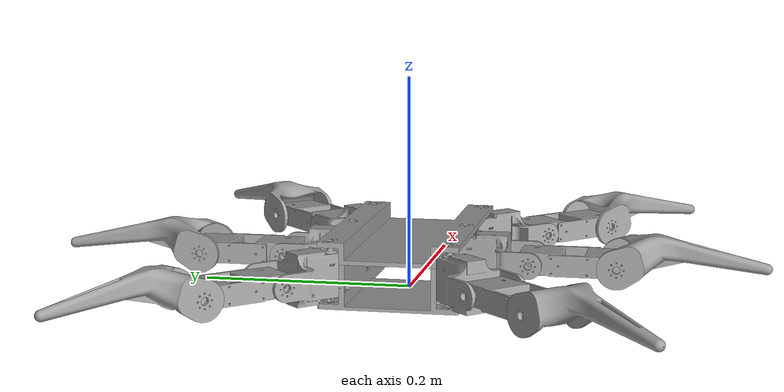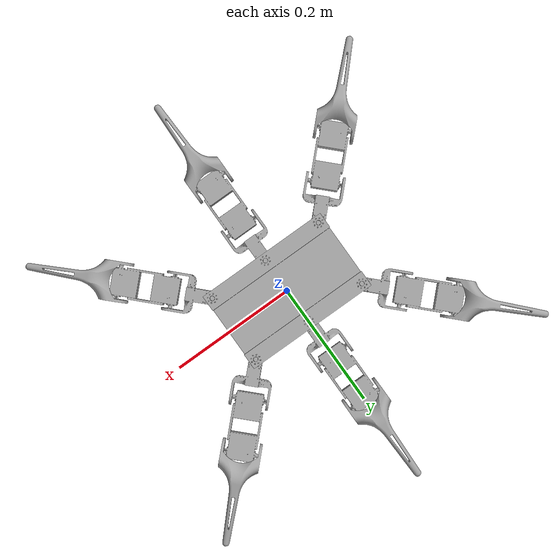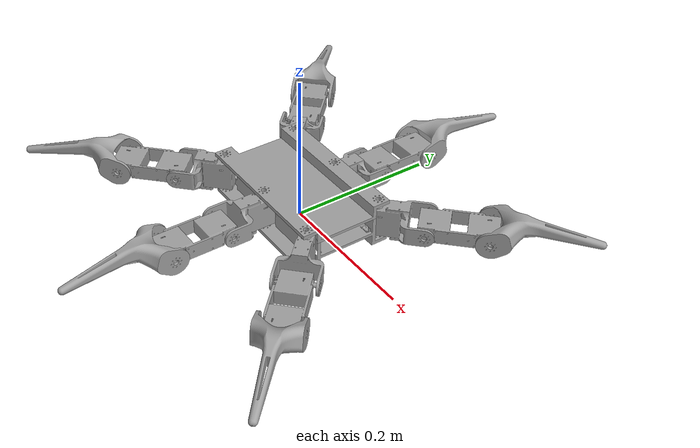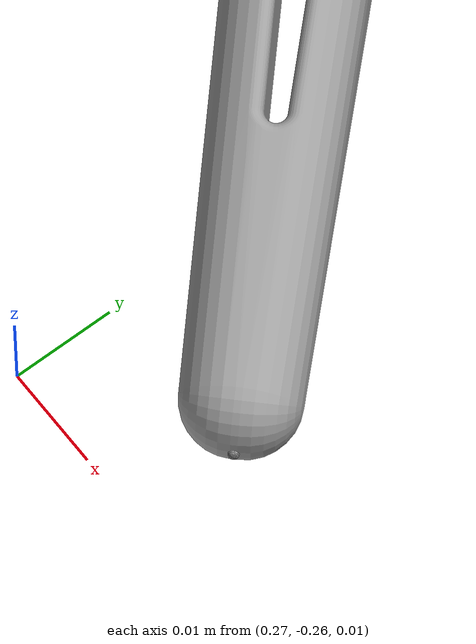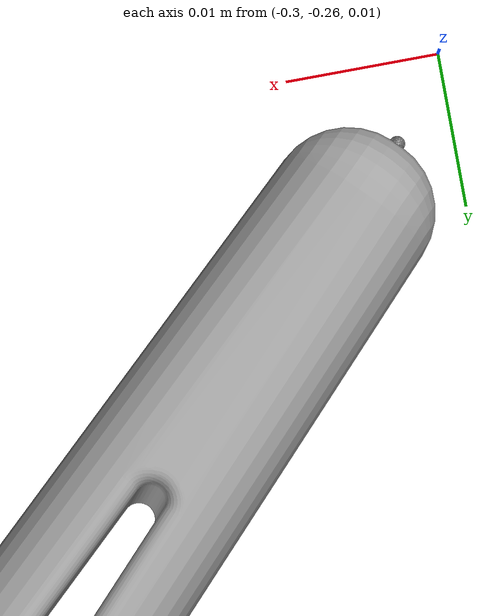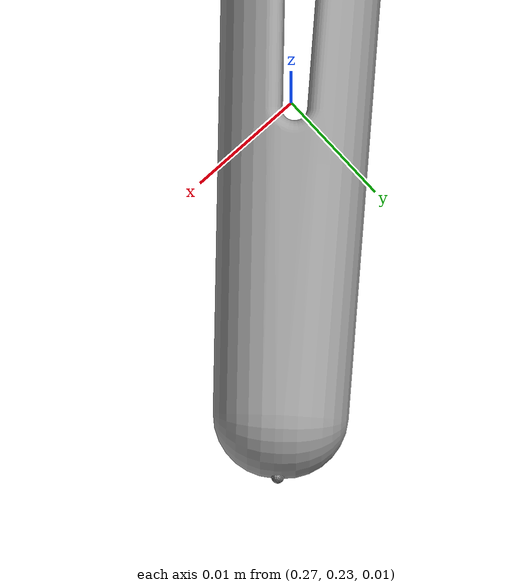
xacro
<?xml version="1.0" ?>
<robot name="spider_robot" xmlns:xacro="http://www.ros.org/wiki/xacro">

<xacro:include filename="$(find robot_contest)/urdf/materials.xacro" />
<xacro:include filename="$(find robot_contest)/urdf/spider_robot.trans" />
<xacro:include filename="$(find robot_contest)/urdf/spider_robot.gazebo" />

<link name="dummy">
</link>

<joint name="dummy_joint" type="fixed">
  <parent link="dummy"/>
  <child link="base_link"/>
</joint>

<link name="base_link">
  <inertial>
    <origin xyz="0.0021738035282516323 -5.3831472792831295e-06 0.01261348241836993" rpy="0 0 0"/>
    <mass value="1.3309040257890745"/>
    <inertia ixx="0.002367" iyy="0.004807" izz="0.006796" ixy="-1e-06" iyz="0.0" ixz="-0.000181"/>
  </inertial>
  <visual>
    <origin xyz="0 0 0" rpy="0 0 0"/>
    <geometry>
      <mesh filename="package://robot_contest/meshes/base_link.stl" scale="0.001 0.001 0.001"/>
    </geometry>
    <material name="_"/>
  </visual>
  <collision>
    <origin xyz="0 0 0" rpy="0 0 0"/>
    <geometry>
      <mesh filename="package://robot_contest/meshes/base_link.stl" scale="0.001 0.001 0.001"/>
    </geometry>
  </collision>
</link>

<link name="part1_1">
  <inertial>
    <origin xyz="0.022505274993332033 0.02250533409144543 0.025822431167356885" rpy="0 0 0"/>
    <mass value="0.4602344613336842"/>
    <inertia ixx="0.000191" iyy="0.000191" izz="0.000233" ixy="-1.7e-05" iyz="2e-06" ixz="2e-06"/>
  </inertial>
  <visual>
    <origin xyz="-0.095 -0.0545 -0.005" rpy="0 0 0"/>
    <geometry>
      <mesh filename="package://robot_contest/meshes/part1_1.stl" scale="0.001 0.001 0.001"/>
    </geometry>
    <material name="_"/>
  </visual>
  <collision>
    <origin xyz="-0.095 -0.0545 -0.005" rpy="0 0 0"/>
    <geometry>
      <mesh filename="package://robot_contest/meshes/part1_1.stl" scale="0.001 0.001 0.001"/>
    </geometry>
  </collision>
</link>

<link name="part2_1">
  <inertial>
    <origin xyz="0.0700858828860957 -0.01258371206185141 7.509815979495071e-08" rpy="0 0 0"/>
    <mass value="0.4914048488278606"/>
    <inertia ixx="0.000667" iyy="0.000662" izz="0.001296" ixy="0.000141" iyz="-0.0" ixz="0.0"/>
  </inertial>
  <visual>
    <origin xyz="-0.12058 -0.116673 -0.0304" rpy="0 0 0"/>
    <geometry>
      <mesh filename="package://robot_contest/meshes/part2_1.stl" scale="0.001 0.001 0.001"/>
    </geometry>
    <material name="_"/>
  </visual>
  <collision>
    <origin xyz="-0.12058 -0.116673 -0.0304" rpy="0 0 0"/>
    <geometry>
      <mesh filename="package://robot_contest/meshes/part2_1.stl" scale="0.001 0.001 0.001"/>
    </geometry>
  </collision>
</link>

<link name="part4_1">
  <inertial>
    <origin xyz="0.02250533409144241 -0.02250527499333315 0.02582243116735693" rpy="0 0 0"/>
    <mass value="0.4602344613336842"/>
    <inertia ixx="0.000191" iyy="0.000191" izz="0.000233" ixy="1.7e-05" iyz="-2e-06" ixz="2e-06"/>
  </inertial>
  <visual>
    <origin xyz="-0.095 0.0545 -0.005" rpy="0 0 0"/>
    <geometry>
      <mesh filename="package://robot_contest/meshes/part4_1.stl" scale="0.001 0.001 0.001"/>
    </geometry>
    <material name="_"/>
  </visual>
  <collision>
    <origin xyz="-0.095 0.0545 -0.005" rpy="0 0 0"/>
    <geometry>
      <mesh filename="package://robot_contest/meshes/part4_1.stl" scale="0.001 0.001 0.001"/>
    </geometry>
  </collision>
</link>

<link name="part5_1">
  <inertial>
    <origin xyz="0.07008588288609359 0.012583712061850896 -7.509815944453657e-08" rpy="0 0 0"/>
    <mass value="0.4914048488278606"/>
    <inertia ixx="0.000667" iyy="0.000662" izz="0.001296" ixy="-0.000141" iyz="-0.0" ixz="-0.0"/>
  </inertial>
  <visual>
    <origin xyz="-0.12058 0.116673 -0.0304" rpy="0 0 0"/>
    <geometry>
      <mesh filename="package://robot_contest/meshes/part5_1.stl" scale="0.001 0.001 0.001"/>
    </geometry>
    <material name="_"/>
  </visual>
  <collision>
    <origin xyz="-0.12058 0.116673 -0.0304" rpy="0 0 0"/>
    <geometry>
      <mesh filename="package://robot_contest/meshes/part5_1.stl" scale="0.001 0.001 0.001"/>
    </geometry>
  </collision>
</link>

<link name="part7_1">
  <inertial>
    <origin xyz="-4.1788675663946726e-08 0.03182730690918333 0.025822431167356972" rpy="0 0 0"/>
    <mass value="0.4602344613336842"/>
    <inertia ixx="0.000208" iyy="0.000175" izz="0.000233" ixy="-0.0" iyz="3e-06" ixz="0.0"/>
  </inertial>
  <visual>
    <origin xyz="-0.0 -0.0545 -0.005" rpy="0 0 0"/>
    <geometry>
      <mesh filename="package://robot_contest/meshes/part7_1.stl" scale="0.001 0.001 0.001"/>
    </geometry>
    <material name="_"/>
  </visual>
  <collision>
    <origin xyz="-0.0 -0.0545 -0.005" rpy="0 0 0"/>
    <geometry>
      <mesh filename="package://robot_contest/meshes/part7_1.stl" scale="0.001 0.001 0.001"/>
    </geometry>
  </collision>
</link>

<link name="part8_1">
  <inertial>
    <origin xyz="0.0584560727416802 0.04065991629223413 7.509815936820874e-08" rpy="0 0 0"/>
    <mass value="0.4914048488278607"/>
    <inertia ixx="0.000523" iyy="0.000806" izz="0.001296" ixy="3e-06" iyz="-0.0" ixz="0.0"/>
  </inertial>
  <visual>
    <origin xyz="0.025875 -0.116551 -0.0304" rpy="0 0 0"/>
    <geometry>
      <mesh filename="package://robot_contest/meshes/part8_1.stl" scale="0.001 0.001 0.001"/>
    </geometry>
    <material name="_"/>
  </visual>
  <collision>
    <origin xyz="0.025875 -0.116551 -0.0304" rpy="0 0 0"/>
    <geometry>
      <mesh filename="package://robot_contest/meshes/part8_1.stl" scale="0.001 0.001 0.001"/>
    </geometry>
  </collision>
</link>

<link name="part10_1">
  <inertial>
    <origin xyz="4.178867428557693e-08 -0.03182730690918042 0.025822431167356934" rpy="0 0 0"/>
    <mass value="0.4602344613336842"/>
    <inertia ixx="0.000208" iyy="0.000175" izz="0.000233" ixy="-0.0" iyz="-3e-06" ixz="-0.0"/>
  </inertial>
  <visual>
    <origin xyz="0.0 0.0545 -0.005" rpy="0 0 0"/>
    <geometry>
      <mesh filename="package://robot_contest/meshes/part10_1.stl" scale="0.001 0.001 0.001"/>
    </geometry>
    <material name="_"/>
  </visual>
  <collision>
    <origin xyz="0.0 0.0545 -0.005" rpy="0 0 0"/>
    <geometry>
      <mesh filename="package://robot_contest/meshes/part10_1.stl" scale="0.001 0.001 0.001"/>
    </geometry>
  </collision>
</link>

<link name="part11_1">
  <inertial>
    <origin xyz="0.05845607274167791 -0.04065991629223088 -7.509816075945697e-08" rpy="0 0 0"/>
    <mass value="0.4914048488278607"/>
    <inertia ixx="0.000523" iyy="0.000806" izz="0.001296" ixy="-3e-06" iyz="-0.0" ixz="-0.0"/>
  </inertial>
  <visual>
    <origin xyz="0.025875 0.116551 -0.0304" rpy="0 0 0"/>
    <geometry>
      <mesh filename="package://robot_contest/meshes/part11_1.stl" scale="0.001 0.001 0.001"/>
    </geometry>
    <material name="_"/>
  </visual>
  <collision>
    <origin xyz="0.025875 0.116551 -0.0304" rpy="0 0 0"/>
    <geometry>
      <mesh filename="package://robot_contest/meshes/part11_1.stl" scale="0.001 0.001 0.001"/>
    </geometry>
  </collision>
</link>

<link name="part13_1">
  <inertial>
    <origin xyz="-0.022505334091443813 0.02250527499333347 0.02582243116735773" rpy="0 0 0"/>
    <mass value="0.4602344613336842"/>
    <inertia ixx="0.000191" iyy="0.000191" izz="0.000233" ixy="1.7e-05" iyz="2e-06" ixz="-2e-06"/>
  </inertial>
  <visual>
    <origin xyz="0.095 -0.0545 -0.005" rpy="0 0 0"/>
    <geometry>
      <mesh filename="package://robot_contest/meshes/part13_1.stl" scale="0.001 0.001 0.001"/>
    </geometry>
    <material name="_"/>
  </visual>
  <collision>
    <origin xyz="0.095 -0.0545 -0.005" rpy="0 0 0"/>
    <geometry>
      <mesh filename="package://robot_contest/meshes/part13_1.stl" scale="0.001 0.001 0.001"/>
    </geometry>
  </collision>
</link>

<link name="part14_1">
  <inertial>
    <origin xyz="-0.03416463432822242 0.023337536496022104 7.509816054088181e-08" rpy="0 0 0"/>
    <mass value="0.4914048488278606"/>
    <inertia ixx="0.000662" iyy="0.000667" izz="0.001296" ixy="-0.000141" iyz="-0.0" ixz="-0.0"/>
  </inertial>
  <visual>
    <origin xyz="0.157173 -0.08008 -0.0304" rpy="0 0 0"/>
    <geometry>
      <mesh filename="package://robot_contest/meshes/part14_1.stl" scale="0.001 0.001 0.001"/>
    </geometry>
    <material name="_"/>
  </visual>
  <collision>
    <origin xyz="0.157173 -0.08008 -0.0304" rpy="0 0 0"/>
    <geometry>
      <mesh filename="package://robot_contest/meshes/part14_1.stl" scale="0.001 0.001 0.001"/>
    </geometry>
  </collision>
</link>

<link name="part16_1">
  <inertial>
    <origin xyz="-0.022505274993333407 -0.022505334091439795 0.025822431167357933" rpy="0 0 0"/>
    <mass value="0.4602344613336841"/>
    <inertia ixx="0.000191" iyy="0.000191" izz="0.000233" ixy="-1.7e-05" iyz="-2e-06" ixz="-2e-06"/>
  </inertial>
  <visual>
    <origin xyz="0.095 0.0545 -0.005" rpy="0 0 0"/>
    <geometry>
      <mesh filename="package://robot_contest/meshes/part16_1.stl" scale="0.001 0.001 0.001"/>
    </geometry>
    <material name="_"/>
  </visual>
  <collision>
    <origin xyz="0.095 0.0545 -0.005" rpy="0 0 0"/>
    <geometry>
      <mesh filename="package://robot_contest/meshes/part16_1.stl" scale="0.001 0.001 0.001"/>
    </geometry>
  </collision>
</link>

<link name="part17_1">
  <inertial>
    <origin xyz="-0.03416463432822456 -0.023337536496015623 -7.509815899350847e-08" rpy="0 0 0"/>
    <mass value="0.4914048488278606"/>
    <inertia ixx="0.000662" iyy="0.000667" izz="0.001296" ixy="0.000141" iyz="-0.0" ixz="0.0"/>
  </inertial>
  <visual>
    <origin xyz="0.157173 0.08008 -0.0304" rpy="0 0 0"/>
    <geometry>
      <mesh filename="package://robot_contest/meshes/part17_1.stl" scale="0.001 0.001 0.001"/>
    </geometry>
    <material name="_"/>
  </visual>
  <collision>
    <origin xyz="0.157173 0.08008 -0.0304" rpy="0 0 0"/>
    <geometry>
      <mesh filename="package://robot_contest/meshes/part17_1.stl" scale="0.001 0.001 0.001"/>
    </geometry>
  </collision>
</link>

<link name="part3_1">
  <inertial>
    <origin xyz="0.004221158383464624 -0.04758074361356199 -0.010298255954450997" rpy="0 0 0"/>
    <mass value="0.12505650813052724"/>
    <inertia ixx="0.001082" iyy="0.000159" izz="0.001129" ixy="-7.5e-05" iyz="-0.000208" ixz="-1.1e-05"/>
  </inertial>
  <visual>
    <origin xyz="-0.214003 -0.138254 -0.0304" rpy="0 0 0"/>
    <geometry>
      <mesh filename="package://robot_contest/meshes/part3_1.stl" scale="0.001 0.001 0.001"/>
    </geometry>
    <material name="_"/>
  </visual>
  <collision>
    <origin xyz="-0.214003 -0.138254 -0.0304" rpy="0 0 0"/>
    <geometry>
      <mesh filename="package://robot_contest/meshes/part3_1.stl" scale="0.001 0.001 0.001"/>
    </geometry>
  </collision>
</link>

<link name="part6_1">
  <inertial>
    <origin xyz="0.03479869953680867 0.0592049589644737 -0.010298255954450442" rpy="0 0 0"/>
    <mass value="0.1250565081305319"/>
    <inertia ixx="0.001363" iyy="0.000216" izz="0.001467" ixy="-0.000277" iyz="0.000239" ixz="6.3e-05"/>
  </inertial>
  <visual>
    <origin xyz="-0.214003 0.138254 -0.0304" rpy="0 0 0"/>
    <geometry>
      <mesh filename="package://robot_contest/meshes/part6_1.stl" scale="0.001 0.001 0.001"/>
    </geometry>
    <material name="_"/>
  </visual>
  <collision>
    <origin xyz="-0.214003 0.138254 -0.0304" rpy="0 0 0"/>
    <geometry>
      <mesh filename="package://robot_contest/meshes/part6_1.stl" scale="0.001 0.001 0.001"/>
    </geometry>
  </collision>
</link>

<link name="part9_1">
  <inertial>
    <origin xyz="-0.029793763473125137 0.04613844978067949 -0.010298255954450313" rpy="0 0 0"/>
    <mass value="0.12505650813053223"/>
    <inertia ixx="0.000196" iyy="0.000106" izz="0.000191" ixy="-8e-06" iyz="2e-05" ixz="-1.2e-05"/>
  </inertial>
  <visual>
    <origin xyz="-0.024925 -0.197871 -0.0304" rpy="0 0 0"/>
    <geometry>
      <mesh filename="package://robot_contest/meshes/part9_1.stl" scale="0.001 0.001 0.001"/>
    </geometry>
    <material name="_"/>
  </visual>
  <collision>
    <origin xyz="-0.024925 -0.197871 -0.0304" rpy="0 0 0"/>
    <geometry>
      <mesh filename="package://robot_contest/meshes/part9_1.stl" scale="0.001 0.001 0.001"/>
    </geometry>
  </collision>
</link>

<link name="part12_1">
  <inertial>
    <origin xyz="-0.0763301129730041 -0.06509177558310722 -0.010298255954450247" rpy="0 0 0"/>
    <mass value="0.12505650813053235"/>
    <inertia ixx="0.000278" iyy="0.000392" izz="0.000557" ixy="-0.000175" iyz="-6.3e-05" ixz="-0.000111"/>
  </inertial>
  <visual>
    <origin xyz="-0.024925 0.197871 -0.0304" rpy="0 0 0"/>
    <geometry>
      <mesh filename="package://robot_contest/meshes/part12_1.stl" scale="0.001 0.001 0.001"/>
    </geometry>
    <material name="_"/>
  </visual>
  <collision>
    <origin xyz="-0.024925 0.197871 -0.0304" rpy="0 0 0"/>
    <geometry>
      <mesh filename="package://robot_contest/meshes/part12_1.stl" scale="0.001 0.001 0.001"/>
    </geometry>
  </collision>
</link>

<link name="part15_1">
  <inertial>
    <origin xyz="-0.03721261981245194 0.07321669362063984 -0.010298255954450782" rpy="0 0 0"/>
    <mass value="0.12505650813052843"/>
    <inertia ixx="0.000643" iyy="0.000138" izz="0.00067" ixy="-1.1e-05" iyz="0.000146" ixz="1.5e-05"/>
  </inertial>
  <visual>
    <origin xyz="0.178754 -0.173503 -0.0304" rpy="0 0 0"/>
    <geometry>
      <mesh filename="package://robot_contest/meshes/part15_1.stl" scale="0.001 0.001 0.001"/>
    </geometry>
    <material name="_"/>
  </visual>
  <collision>
    <origin xyz="0.178754 -0.173503 -0.0304" rpy="0 0 0"/>
    <geometry>
      <mesh filename="package://robot_contest/meshes/part15_1.stl" scale="0.001 0.001 0.001"/>
    </geometry>
  </collision>
</link>

<link name="part18_1">
  <inertial>
    <origin xyz="-0.08233230187734139 0.09080916411778589 -0.010298255954450788" rpy="0 0 0"/>
    <mass value="0.12505650813052913"/>
    <inertia ixx="0.001224" iyy="0.000322" izz="0.001434" ixy="0.000383" iyz="0.000223" ixz="-8.3e-05"/>
  </inertial>
  <visual>
    <origin xyz="0.178754 0.173503 -0.0304" rpy="0 0 0"/>
    <geometry>
      <mesh filename="package://robot_contest/meshes/part18_1.stl" scale="0.001 0.001 0.001"/>
    </geometry>
    <material name="_"/>
  </visual>
  <collision>
    <origin xyz="0.178754 0.173503 -0.0304" rpy="0 0 0"/>
    <geometry>
      <mesh filename="package://robot_contest/meshes/part18_1.stl" scale="0.001 0.001 0.001"/>
    </geometry>
  </collision>
</link>

<link name="d_part1_1">
  <inertial>
    <origin xyz="-2.5494084521238136e-07 2.479434127455882e-07 -2.3314683517128287e-15" rpy="0 0 0"/>
    <mass value="4.110250388446646e-06"/>
    <inertia ixx="0.0" iyy="0.0" izz="0.0" ixy="0.0" iyz="-0.0" ixz="0.0"/>
  </inertial>
  <visual>
    <origin xyz="-0.294702 -0.255545 -0.0304" rpy="0 0 0"/>
    <geometry>
      <mesh filename="package://robot_contest/meshes/d_part1_1.stl" scale="0.001 0.001 0.001"/>
    </geometry>
    <material name="_"/>
  </visual>
  <collision>
    <origin xyz="-0.294702 -0.255545 -0.0304" rpy="0 0 0"/>
    <geometry>
      <mesh filename="package://robot_contest/meshes/d_part1_1.stl" scale="0.001 0.001 0.001"/>
    </geometry>
  </collision>
</link>

<link name="d_part2_1">
  <inertial>
    <origin xyz="-2.5494084521238136e-07 2.479434127455882e-07 -2.3314683517128287e-15" rpy="0 0 0"/>
    <mass value="4.110250388446646e-06"/>
    <inertia ixx="0.0" iyy="0.0" izz="0.0" ixy="0.0" iyz="-0.0" ixz="0.0"/>
  </inertial>
  <visual>
    <origin xyz="-0.294702 -0.255545 -0.0304" rpy="0 0 0"/>
    <geometry>
      <mesh filename="package://robot_contest/meshes/d_part2_1.stl" scale="0.001 0.001 0.001"/>
    </geometry>
    <material name="_"/>
  </visual>
  <collision>
    <origin xyz="-0.294702 -0.255545 -0.0304" rpy="0 0 0"/>
    <geometry>
      <mesh filename="package://robot_contest/meshes/d_part2_1.stl" scale="0.001 0.001 0.001"/>
    </geometry>
  </collision>
</link>

<link name="d_part3_1">
  <inertial>
    <origin xyz="-2.5494084521238136e-07 2.479434127455882e-07 -2.3314683517128287e-15" rpy="0 0 0"/>
    <mass value="4.110250388446646e-06"/>
    <inertia ixx="0.0" iyy="0.0" izz="0.0" ixy="0.0" iyz="-0.0" ixz="0.0"/>
  </inertial>
  <visual>
    <origin xyz="-0.294702 -0.255545 -0.0304" rpy="0 0 0"/>
    <geometry>
      <mesh filename="package://robot_contest/meshes/d_part3_1.stl" scale="0.001 0.001 0.001"/>
    </geometry>
    <material name="_"/>
  </visual>
  <collision>
    <origin xyz="-0.294702 -0.255545 -0.0304" rpy="0 0 0"/>
    <geometry>
      <mesh filename="package://robot_contest/meshes/d_part3_1.stl" scale="0.001 0.001 0.001"/>
    </geometry>
  </collision>
</link>

<link name="d_part4_1">
  <inertial>
    <origin xyz="-2.5494084748833856e-07 -2.4794341335621084e-07 -2.321060010856968e-15" rpy="0 0 0"/>
    <mass value="4.110250388446646e-06"/>
    <inertia ixx="0.0" iyy="0.0" izz="0.0" ixy="0.0" iyz="0.0" ixz="0.0"/>
  </inertial>
  <visual>
    <origin xyz="-0.294702 0.255545 -0.0304" rpy="0 0 0"/>
    <geometry>
      <mesh filename="package://robot_contest/meshes/d_part4_1.stl" scale="0.001 0.001 0.001"/>
    </geometry>
    <material name="_"/>
  </visual>
  <collision>
    <origin xyz="-0.294702 0.255545 -0.0304" rpy="0 0 0"/>
    <geometry>
      <mesh filename="package://robot_contest/meshes/d_part4_1.stl" scale="0.001 0.001 0.001"/>
    </geometry>
  </collision>
</link>

<link name="d_part5_1">
  <inertial>
    <origin xyz="-2.5494084748833856e-07 -2.4794341335621084e-07 -2.321060010856968e-15" rpy="0 0 0"/>
    <mass value="4.110250388446646e-06"/>
    <inertia ixx="0.0" iyy="0.0" izz="0.0" ixy="0.0" iyz="0.0" ixz="0.0"/>
  </inertial>
  <visual>
    <origin xyz="-0.294702 0.255545 -0.0304" rpy="0 0 0"/>
    <geometry>
      <mesh filename="package://robot_contest/meshes/d_part5_1.stl" scale="0.001 0.001 0.001"/>
    </geometry>
    <material name="_"/>
  </visual>
  <collision>
    <origin xyz="-0.294702 0.255545 -0.0304" rpy="0 0 0"/>
    <geometry>
      <mesh filename="package://robot_contest/meshes/d_part5_1.stl" scale="0.001 0.001 0.001"/>
    </geometry>
  </collision>
</link>

<link name="d_part6_1">
  <inertial>
    <origin xyz="-2.5494084748833856e-07 -2.4794341335621084e-07 -2.321060010856968e-15" rpy="0 0 0"/>
    <mass value="4.110250388446646e-06"/>
    <inertia ixx="0.0" iyy="0.0" izz="0.0" ixy="0.0" iyz="0.0" ixz="0.0"/>
  </inertial>
  <visual>
    <origin xyz="-0.294702 0.255545 -0.0304" rpy="0 0 0"/>
    <geometry>
      <mesh filename="package://robot_contest/meshes/d_part6_1.stl" scale="0.001 0.001 0.001"/>
    </geometry>
    <material name="_"/>
  </visual>
  <collision>
    <origin xyz="-0.294702 0.255545 -0.0304" rpy="0 0 0"/>
    <geometry>
      <mesh filename="package://robot_contest/meshes/d_part6_1.stl" scale="0.001 0.001 0.001"/>
    </geometry>
  </collision>
</link>

<link name="d_part7_1">
  <inertial>
    <origin xyz="-4.640385298237959e-17 -8.370776555244319e-08 -2.258609965721803e-15" rpy="0 0 0"/>
    <mass value="4.110250388446646e-06"/>
    <inertia ixx="0.0" iyy="0.0" izz="0.0" ixy="-0.0" iyz="0.0" ixz="-0.0"/>
  </inertial>
  <visual>
    <origin xyz="0.00095 -0.337871 -0.0304" rpy="0 0 0"/>
    <geometry>
      <mesh filename="package://robot_contest/meshes/d_part7_1.stl" scale="0.001 0.001 0.001"/>
    </geometry>
    <material name="_"/>
  </visual>
  <collision>
    <origin xyz="0.00095 -0.337871 -0.0304" rpy="0 0 0"/>
    <geometry>
      <mesh filename="package://robot_contest/meshes/d_part7_1.stl" scale="0.001 0.001 0.001"/>
    </geometry>
  </collision>
</link>

<link name="d_part8_1">
  <inertial>
    <origin xyz="-4.640385298237959e-17 -8.370776555244319e-08 -2.258609965721803e-15" rpy="0 0 0"/>
    <mass value="4.110250388446646e-06"/>
    <inertia ixx="0.0" iyy="0.0" izz="0.0" ixy="-0.0" iyz="0.0" ixz="-0.0"/>
  </inertial>
  <visual>
    <origin xyz="0.00095 -0.337871 -0.0304" rpy="0 0 0"/>
    <geometry>
      <mesh filename="package://robot_contest/meshes/d_part8_1.stl" scale="0.001 0.001 0.001"/>
    </geometry>
    <material name="_"/>
  </visual>
  <collision>
    <origin xyz="0.00095 -0.337871 -0.0304" rpy="0 0 0"/>
    <geometry>
      <mesh filename="package://robot_contest/meshes/d_part8_1.stl" scale="0.001 0.001 0.001"/>
    </geometry>
  </collision>
</link>

<link name="d_part9_1">
  <inertial>
    <origin xyz="-4.640385298237959e-17 -8.370776555244319e-08 -2.258609965721803e-15" rpy="0 0 0"/>
    <mass value="4.110250388446646e-06"/>
    <inertia ixx="0.0" iyy="0.0" izz="0.0" ixy="-0.0" iyz="0.0" ixz="-0.0"/>
  </inertial>
  <visual>
    <origin xyz="0.00095 -0.337871 -0.0304" rpy="0 0 0"/>
    <geometry>
      <mesh filename="package://robot_contest/meshes/d_part9_1.stl" scale="0.001 0.001 0.001"/>
    </geometry>
    <material name="_"/>
  </visual>
  <collision>
    <origin xyz="0.00095 -0.337871 -0.0304" rpy="0 0 0"/>
    <geometry>
      <mesh filename="package://robot_contest/meshes/d_part9_1.stl" scale="0.001 0.001 0.001"/>
    </geometry>
  </collision>
</link>

<link name="d_part10_1">
  <inertial>
    <origin xyz="-2.564354978362715e-15 8.370776855004536e-08 -2.3037127760972e-15" rpy="0 0 0"/>
    <mass value="4.110250388446646e-06"/>
    <inertia ixx="0.0" iyy="0.0" izz="0.0" ixy="0.0" iyz="-0.0" ixz="0.0"/>
  </inertial>
  <visual>
    <origin xyz="0.00095 0.337871 -0.0304" rpy="0 0 0"/>
    <geometry>
      <mesh filename="package://robot_contest/meshes/d_part10_1.stl" scale="0.001 0.001 0.001"/>
    </geometry>
    <material name="_"/>
  </visual>
  <collision>
    <origin xyz="0.00095 0.337871 -0.0304" rpy="0 0 0"/>
    <geometry>
      <mesh filename="package://robot_contest/meshes/d_part10_1.stl" scale="0.001 0.001 0.001"/>
    </geometry>
  </collision>
</link>

<link name="d_part11_1">
  <inertial>
    <origin xyz="-2.564354978362715e-15 8.370776855004536e-08 -2.3037127760972e-15" rpy="0 0 0"/>
    <mass value="4.110250388446646e-06"/>
    <inertia ixx="0.0" iyy="0.0" izz="0.0" ixy="0.0" iyz="-0.0" ixz="0.0"/>
  </inertial>
  <visual>
    <origin xyz="0.00095 0.337871 -0.0304" rpy="0 0 0"/>
    <geometry>
      <mesh filename="package://robot_contest/meshes/d_part11_1.stl" scale="0.001 0.001 0.001"/>
    </geometry>
    <material name="_"/>
  </visual>
  <collision>
    <origin xyz="0.00095 0.337871 -0.0304" rpy="0 0 0"/>
    <geometry>
      <mesh filename="package://robot_contest/meshes/d_part11_1.stl" scale="0.001 0.001 0.001"/>
    </geometry>
  </collision>
</link>

<link name="d_part12_1">
  <inertial>
    <origin xyz="-2.564354978362715e-15 8.370776855004536e-08 -2.3037127760972e-15" rpy="0 0 0"/>
    <mass value="4.110250388446646e-06"/>
    <inertia ixx="0.0" iyy="0.0" izz="0.0" ixy="0.0" iyz="-0.0" ixz="0.0"/>
  </inertial>
  <visual>
    <origin xyz="0.00095 0.337871 -0.0304" rpy="0 0 0"/>
    <geometry>
      <mesh filename="package://robot_contest/meshes/d_part12_1.stl" scale="0.001 0.001 0.001"/>
    </geometry>
    <material name="_"/>
  </visual>
  <collision>
    <origin xyz="0.00095 0.337871 -0.0304" rpy="0 0 0"/>
    <geometry>
      <mesh filename="package://robot_contest/meshes/d_part12_1.stl" scale="0.001 0.001 0.001"/>
    </geometry>
  </collision>
</link>

<link name="d_part13_1">
  <inertial>
    <origin xyz="-2.479434057511831e-07 -2.549408363861083e-07 -2.3002433291452462e-15" rpy="0 0 0"/>
    <mass value="4.110250388446646e-06"/>
    <inertia ixx="0.0" iyy="0.0" izz="0.0" ixy="0.0" iyz="0.0" ixz="0.0"/>
  </inertial>
  <visual>
    <origin xyz="0.296045 -0.254202 -0.0304" rpy="0 0 0"/>
    <geometry>
      <mesh filename="package://robot_contest/meshes/d_part13_1.stl" scale="0.001 0.001 0.001"/>
    </geometry>
    <material name="_"/>
  </visual>
  <collision>
    <origin xyz="0.296045 -0.254202 -0.0304" rpy="0 0 0"/>
    <geometry>
      <mesh filename="package://robot_contest/meshes/d_part13_1.stl" scale="0.001 0.001 0.001"/>
    </geometry>
  </collision>
</link>

<link name="d_part14_1">
  <inertial>
    <origin xyz="-2.479434057511831e-07 -2.549408363861083e-07 -2.3002433291452462e-15" rpy="0 0 0"/>
    <mass value="4.110250388446646e-06"/>
    <inertia ixx="0.0" iyy="0.0" izz="0.0" ixy="0.0" iyz="0.0" ixz="0.0"/>
  </inertial>
  <visual>
    <origin xyz="0.296045 -0.254202 -0.0304" rpy="0 0 0"/>
    <geometry>
      <mesh filename="package://robot_contest/meshes/d_part14_1.stl" scale="0.001 0.001 0.001"/>
    </geometry>
    <material name="_"/>
  </visual>
  <collision>
    <origin xyz="0.296045 -0.254202 -0.0304" rpy="0 0 0"/>
    <geometry>
      <mesh filename="package://robot_contest/meshes/d_part14_1.stl" scale="0.001 0.001 0.001"/>
    </geometry>
  </collision>
</link>

<link name="d_part15_1">
  <inertial>
    <origin xyz="-2.479434057511831e-07 -2.549408363861083e-07 -2.3002433291452462e-15" rpy="0 0 0"/>
    <mass value="4.110250388446646e-06"/>
    <inertia ixx="0.0" iyy="0.0" izz="0.0" ixy="0.0" iyz="0.0" ixz="0.0"/>
  </inertial>
  <visual>
    <origin xyz="0.296045 -0.254202 -0.0304" rpy="0 0 0"/>
    <geometry>
      <mesh filename="package://robot_contest/meshes/d_part15_1.stl" scale="0.001 0.001 0.001"/>
    </geometry>
    <material name="_"/>
  </visual>
  <collision>
    <origin xyz="0.296045 -0.254202 -0.0304" rpy="0 0 0"/>
    <geometry>
      <mesh filename="package://robot_contest/meshes/d_part15_1.stl" scale="0.001 0.001 0.001"/>
    </geometry>
  </collision>
</link>

<link name="d_part16_1">
  <inertial>
    <origin xyz="-2.479434128566105e-07 2.5494084865407274e-07 -2.338407245616736e-15" rpy="0 0 0"/>
    <mass value="4.110250388446646e-06"/>
    <inertia ixx="0.0" iyy="0.0" izz="0.0" ixy="-0.0" iyz="-0.0" ixz="0.0"/>
  </inertial>
  <visual>
    <origin xyz="0.296045 0.254202 -0.0304" rpy="0 0 0"/>
    <geometry>
      <mesh filename="package://robot_contest/meshes/d_part16_1.stl" scale="0.001 0.001 0.001"/>
    </geometry>
    <material name="_"/>
  </visual>
  <collision>
    <origin xyz="0.296045 0.254202 -0.0304" rpy="0 0 0"/>
    <geometry>
      <mesh filename="package://robot_contest/meshes/d_part16_1.stl" scale="0.001 0.001 0.001"/>
    </geometry>
  </collision>
</link>

<link name="d_part17_1">
  <inertial>
    <origin xyz="-2.479434128566105e-07 2.5494084865407274e-07 -2.338407245616736e-15" rpy="0 0 0"/>
    <mass value="4.110250388446646e-06"/>
    <inertia ixx="0.0" iyy="0.0" izz="0.0" ixy="-0.0" iyz="-0.0" ixz="0.0"/>
  </inertial>
  <visual>
    <origin xyz="0.296045 0.254202 -0.0304" rpy="0 0 0"/>
    <geometry>
      <mesh filename="package://robot_contest/meshes/d_part17_1.stl" scale="0.001 0.001 0.001"/>
    </geometry>
    <material name="_"/>
  </visual>
  <collision>
    <origin xyz="0.296045 0.254202 -0.0304" rpy="0 0 0"/>
    <geometry>
      <mesh filename="package://robot_contest/meshes/d_part17_1.stl" scale="0.001 0.001 0.001"/>
    </geometry>
  </collision>
</link>

<link name="d_part18_1">
  <inertial>
    <origin xyz="-2.479434128566105e-07 2.5494084865407274e-07 -2.338407245616736e-15" rpy="0 0 0"/>
    <mass value="4.110250388446646e-06"/>
    <inertia ixx="0.0" iyy="0.0" izz="0.0" ixy="-0.0" iyz="-0.0" ixz="0.0"/>
  </inertial>
  <visual>
    <origin xyz="0.296045 0.254202 -0.0304" rpy="0 0 0"/>
    <geometry>
      <mesh filename="package://robot_contest/meshes/d_part18_1.stl" scale="0.001 0.001 0.001"/>
    </geometry>
    <material name="_"/>
  </visual>
  <collision>
    <origin xyz="0.296045 0.254202 -0.0304" rpy="0 0 0"/>
    <geometry>
      <mesh filename="package://robot_contest/meshes/d_part18_1.stl" scale="0.001 0.001 0.001"/>
    </geometry>
  </collision>
</link>

<link name="body_1">
  <inertial>
    <origin xyz="-0.1080209237916741 -0.04381750881088558 0.07384050386535285" rpy="0 0 0"/>
    <mass value="11.882484155705294"/>
    <inertia ixx="0.03976" iyy="0.086041" izz="0.059318" ixy="-0.000229" iyz="-0.000376" ixz="0.013585"/>
  </inertial>
  <visual>
    <origin xyz="-0.085202 -0.0445 -0.0415" rpy="0 0 0"/>
    <geometry>
      <mesh filename="package://robot_contest/meshes/body_1.stl" scale="0.001 0.001 0.001"/>
    </geometry>
    <material name="_"/>
  </visual>
  <collision>
    <origin xyz="-0.085202 -0.0445 -0.0415" rpy="0 0 0"/>
    <geometry>
      <mesh filename="package://robot_contest/meshes/body_1.stl" scale="0.001 0.001 0.001"/>
    </geometry>
  </collision>
</link>

<joint name="rev1" type="continuous">
  <origin xyz="0.095 0.0545 0.005" rpy="0 0 0"/>
  <parent link="base_link"/>
  <child link="part1_1"/>
  <axis xyz="-0.0 0.0 -1.0"/>
</joint>

<joint name="rev2" type="continuous">
  <origin xyz="0.02558 0.062173 0.0254" rpy="0 0 0"/>
  <parent link="part1_1"/>
  <child link="part2_1"/>
  <axis xyz="-0.707107 0.707107 -0.0"/>
</joint>

<joint name="rev4" type="continuous">
  <origin xyz="0.095 -0.0545 0.005" rpy="0 0 0"/>
  <parent link="base_link"/>
  <child link="part4_1"/>
  <axis xyz="-0.0 0.0 -1.0"/>
</joint>

<joint name="rev5" type="continuous">
  <origin xyz="0.02558 -0.062173 0.0254" rpy="0 0 0"/>
  <parent link="part4_1"/>
  <child link="part5_1"/>
  <axis xyz="-0.707107 -0.707107 -0.0"/>
</joint>

<joint name="rev7" type="continuous">
  <origin xyz="0.0 0.0545 0.005" rpy="0 0 0"/>
  <parent link="base_link"/>
  <child link="part7_1"/>
  <axis xyz="-0.0 0.0 -1.0"/>
</joint>

<joint name="rev8" type="continuous">
  <origin xyz="-0.025875 0.062051 0.0254" rpy="0 0 0"/>
  <parent link="part7_1"/>
  <child link="part8_1"/>
  <axis xyz="-1.0 0.0 -0.0"/>
</joint>

<joint name="rev10" type="continuous">
  <origin xyz="0.0 -0.0545 0.005" rpy="0 0 0"/>
  <parent link="base_link"/>
  <child link="part10_1"/>
  <axis xyz="-0.0 0.0 -1.0"/>
</joint>

<joint name="rev11" type="continuous">
  <origin xyz="-0.025875 -0.062051 0.0254" rpy="0 0 0"/>
  <parent link="part10_1"/>
  <child link="part11_1"/>
  <axis xyz="-1.0 0.0 -0.0"/>
</joint>

<joint name="rev13" type="continuous">
  <origin xyz="-0.095 0.0545 0.005" rpy="0 0 0"/>
  <parent link="base_link"/>
  <child link="part13_1"/>
  <axis xyz="-0.0 0.0 -1.0"/>
</joint>

<joint name="rev14" type="continuous">
  <origin xyz="-0.062173 0.02558 0.0254" rpy="0 0 0"/>
  <parent link="part13_1"/>
  <child link="part14_1"/>
  <axis xyz="-0.707107 -0.707107 -0.0"/>
</joint>

<joint name="rev16" type="continuous">
  <origin xyz="-0.095 -0.0545 0.005" rpy="0 0 0"/>
  <parent link="base_link"/>
  <child link="part16_1"/>
  <axis xyz="-0.0 0.0 -1.0"/>
</joint>

<joint name="rev17" type="continuous">
  <origin xyz="-0.062173 -0.02558 0.0254" rpy="0 0 0"/>
  <parent link="part16_1"/>
  <child link="part17_1"/>
  <axis xyz="-0.707107 0.707107 0.0"/>
</joint>

<joint name="rev3" type="continuous">
  <origin xyz="0.093423 0.021581 0.0" rpy="0 0 0"/>
  <parent link="part2_1"/>
  <child link="part3_1"/>
  <axis xyz="-0.707107 0.707107 -0.0"/>
</joint>

<joint name="rev6" type="continuous">
  <origin xyz="0.093423 -0.021581 0.0" rpy="0 0 0"/>
  <parent link="part5_1"/>
  <child link="part6_1"/>
  <axis xyz="-0.707107 -0.707107 -0.0"/>
</joint>

<joint name="rev9" type="continuous">
  <origin xyz="0.0508 0.08132 0.0" rpy="0 0 0"/>
  <parent link="part8_1"/>
  <child link="part9_1"/>
  <axis xyz="-1.0 -0.0 -0.0"/>
</joint>

<joint name="rev12" type="continuous">
  <origin xyz="0.0508 -0.08132 0.0" rpy="0 0 0"/>
  <parent link="part11_1"/>
  <child link="part12_1"/>
  <axis xyz="-1.0 0.0 -0.0"/>
</joint>

<joint name="rev15" type="continuous">
  <origin xyz="-0.021581 0.093423 0.0" rpy="0 0 0"/>
  <parent link="part14_1"/>
  <child link="part15_1"/>
  <axis xyz="-0.707107 -0.707107 -0.0"/>
</joint>

<joint name="rev18" type="continuous">
  <origin xyz="-0.021581 -0.093423 0.0" rpy="0 0 0"/>
  <parent link="part17_1"/>
  <child link="part18_1"/>
  <axis xyz="-0.707107 0.707107 0.0"/>
</joint>

<joint name="d_rev1" type="continuous">
  <origin xyz="0.080699 0.117291 0.0" rpy="0 0 0"/>
  <parent link="part3_1"/>
  <child link="d_part1_1"/>
  <axis xyz="0.707107 0.707107 -0.0"/>
</joint>

<joint name="d_rev2" type="continuous">
  <origin xyz="0.0 0.0 0.0" rpy="0 0 0"/>
  <parent link="d_part1_1"/>
  <child link="d_part2_1"/>
  <axis xyz="0.707107 -0.707107 0.0"/>
</joint>

<joint name="d_rev3" type="continuous">
  <origin xyz="0.0 0.0 0.0" rpy="0 0 0"/>
  <parent link="d_part2_1"/>
  <child link="d_part3_1"/>
  <axis xyz="0.0 0.0 1.0"/>
</joint>

<joint name="d_rev4" type="continuous">
  <origin xyz="0.080699 -0.117291 0.0" rpy="0 0 0"/>
  <parent link="part6_1"/>
  <child link="d_part4_1"/>
  <axis xyz="0.707107 -0.707107 -0.0"/>
</joint>

<joint name="d_rev5" type="continuous">
  <origin xyz="0.0 0.0 0.0" rpy="0 0 0"/>
  <parent link="d_part4_1"/>
  <child link="d_part5_1"/>
  <axis xyz="-0.707107 -0.707107 -0.0"/>
</joint>

<joint name="d_rev6" type="continuous">
  <origin xyz="0.0 0.0 0.0" rpy="0 0 0"/>
  <parent link="d_part5_1"/>
  <child link="d_part6_1"/>
  <axis xyz="0.0 -0.0 1.0"/>
</joint>

<joint name="d_rev7" type="continuous">
  <origin xyz="-0.025875 0.14 0.0" rpy="0 0 0"/>
  <parent link="part9_1"/>
  <child link="d_part7_1"/>
  <axis xyz="-0.0 1.0 -0.0"/>
</joint>

<joint name="d_rev8" type="continuous">
  <origin xyz="0.0 0.0 0.0" rpy="0 0 0"/>
  <parent link="d_part7_1"/>
  <child link="d_part8_1"/>
  <axis xyz="1.0 0.0 0.0"/>
</joint>

<joint name="d_rev9" type="continuous">
  <origin xyz="0.0 0.0 0.0" rpy="0 0 0"/>
  <parent link="d_part8_1"/>
  <child link="d_part9_1"/>
  <axis xyz="-0.0 0.0 1.0"/>
</joint>

<joint name="d_rev10" type="continuous">
  <origin xyz="-0.025875 -0.14 0.0" rpy="0 0 0"/>
  <parent link="part12_1"/>
  <child link="d_part10_1"/>
  <axis xyz="-0.0 -1.0 -0.0"/>
</joint>

<joint name="d_rev11" type="continuous">
  <origin xyz="0.0 0.0 0.0" rpy="0 0 0"/>
  <parent link="d_part10_1"/>
  <child link="d_part11_1"/>
  <axis xyz="-1.0 0.0 -0.0"/>
</joint>

<joint name="d_rev12" type="continuous">
  <origin xyz="0.0 0.0 0.0" rpy="0 0 0"/>
  <parent link="d_part11_1"/>
  <child link="d_part12_1"/>
  <axis xyz="-0.0 -0.0 1.0"/>
</joint>

<joint name="d_rev13" type="continuous">
  <origin xyz="-0.117291 0.080699 0.0" rpy="0 0 0"/>
  <parent link="part15_1"/>
  <child link="d_part13_1"/>
  <axis xyz="-0.707107 0.707107 -0.0"/>
</joint>

<joint name="d_rev14" type="continuous">
  <origin xyz="0.0 0.0 0.0" rpy="0 0 0"/>
  <parent link="d_part13_1"/>
  <child link="d_part14_1"/>
  <axis xyz="0.707107 0.707107 0.0"/>
</joint>

<joint name="d_rev15" type="continuous">
  <origin xyz="0.0 0.0 0.0" rpy="0 0 0"/>
  <parent link="d_part14_1"/>
  <child link="d_part15_1"/>
  <axis xyz="-0.0 0.0 1.0"/>
</joint>

<joint name="d_rev16" type="continuous">
  <origin xyz="-0.117291 -0.080699 0.0" rpy="0 0 0"/>
  <parent link="part18_1"/>
  <child link="d_part16_1"/>
  <axis xyz="-0.707107 -0.707107 -0.0"/>
</joint>

<joint name="d_rev17" type="continuous">
  <origin xyz="0.0 0.0 0.0" rpy="0 0 0"/>
  <parent link="d_part16_1"/>
  <child link="d_part17_1"/>
  <axis xyz="-0.707107 0.707107 0.0"/>
</joint>

<joint name="d_rev18" type="continuous">
  <origin xyz="0.0 0.0 0.0" rpy="0 0 0"/>
  <parent link="d_part17_1"/>
  <child link="d_part18_1"/>
  <axis xyz="-0.0 -0.0 1.0"/>
</joint>

<joint name="fix1" type="fixed">
  <origin xyz="0.085202 0.0445 0.0415" rpy="0 0 0"/>
  <parent link="base_link"/>
  <child link="body_1"/>
</joint>

</robot>

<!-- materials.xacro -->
<robot name="spider_robot" xmlns:xacro="http://www.ros.org/wiki/xacro" >

<material name="silver_default">
  <color rgba="0.700 0.700 0.700 1.000"/>
</material>
<material name="_">
  <color rgba="0.6274509803921569 0.6274509803921569 0.6274509803921569 1.0"/>
</material>

</robot>

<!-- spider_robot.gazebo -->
<robot name="spider_robot" xmlns:xacro="http://www.ros.org/wiki/xacro" >

<xacro:property name="body_color" value="Gazebo/Silver" />

<gazebo>
  <plugin name="control" filename="libgazebo_ros_control.so"/>
</gazebo>
<gazebo reference="base_link">
  <material>${body_color}</material>
  <mu1>0.2</mu1>
  <mu2>0.2</mu2>
  <selfCollide>true</selfCollide>
  <gravity>true</gravity>
</gazebo>

<gazebo reference="part1_1">
  <material>${body_color}</material>
  <mu1>0.2</mu1>
  <mu2>0.2</mu2>
  <selfCollide>true</selfCollide>
</gazebo>

<gazebo reference="part2_1">
  <material>${body_color}</material>
  <mu1>0.2</mu1>
  <mu2>0.2</mu2>
  <selfCollide>true</selfCollide>
</gazebo>

<gazebo reference="part4_1">
  <material>${body_color}</material>
  <mu1>0.2</mu1>
  <mu2>0.2</mu2>
  <selfCollide>true</selfCollide>
</gazebo>

<gazebo reference="part5_1">
  <material>${body_color}</material>
  <mu1>0.2</mu1>
  <mu2>0.2</mu2>
  <selfCollide>true</selfCollide>
</gazebo>

<gazebo reference="part7_1">
  <material>${body_color}</material>
  <mu1>0.2</mu1>
  <mu2>0.2</mu2>
  <selfCollide>true</selfCollide>
</gazebo>

<gazebo reference="part8_1">
  <material>${body_color}</material>
  <mu1>0.2</mu1>
  <mu2>0.2</mu2>
  <selfCollide>true</selfCollide>
</gazebo>

<gazebo reference="part10_1">
  <material>${body_color}</material>
  <mu1>0.2</mu1>
  <mu2>0.2</mu2>
  <selfCollide>true</selfCollide>
</gazebo>

<gazebo reference="part11_1">
  <material>${body_color}</material>
  <mu1>0.2</mu1>
  <mu2>0.2</mu2>
  <selfCollide>true</selfCollide>
</gazebo>

<gazebo reference="part13_1">
  <material>${body_color}</material>
  <mu1>0.2</mu1>
  <mu2>0.2</mu2>
  <selfCollide>true</selfCollide>
</gazebo>

<gazebo reference="part14_1">
  <material>${body_color}</material>
  <mu1>0.2</mu1>
  <mu2>0.2</mu2>
  <selfCollide>true</selfCollide>
</gazebo>

<gazebo reference="part16_1">
  <material>${body_color}</material>
  <mu1>0.2</mu1>
  <mu2>0.2</mu2>
  <selfCollide>true</selfCollide>
</gazebo>

<gazebo reference="part17_1">
  <material>${body_color}</material>
  <mu1>0.2</mu1>
  <mu2>0.2</mu2>
  <selfCollide>true</selfCollide>
</gazebo>

<gazebo reference="part3_1">
  <material>${body_color}</material>
  <mu1>0.2</mu1>
  <mu2>0.2</mu2>
  <selfCollide>true</selfCollide>
</gazebo>

<gazebo reference="part6_1">
  <material>${body_color}</material>
  <mu1>0.2</mu1>
  <mu2>0.2</mu2>
  <selfCollide>true</selfCollide>
</gazebo>

<gazebo reference="part9_1">
  <material>${body_color}</material>
  <mu1>0.2</mu1>
  <mu2>0.2</mu2>
  <selfCollide>true</selfCollide>
</gazebo>

<gazebo reference="part12_1">
  <material>${body_color}</material>
  <mu1>0.2</mu1>
  <mu2>0.2</mu2>
  <selfCollide>true</selfCollide>
</gazebo>

<gazebo reference="part15_1">
  <material>${body_color}</material>
  <mu1>0.2</mu1>
  <mu2>0.2</mu2>
  <selfCollide>true</selfCollide>
</gazebo>

<gazebo reference="part18_1">
  <material>${body_color}</material>
  <mu1>0.2</mu1>
  <mu2>0.2</mu2>
  <selfCollide>true</selfCollide>
</gazebo>

<gazebo reference="d_part1_1">
  <material>${body_color}</material>
  <mu1>0.2</mu1>
  <mu2>0.2</mu2>
  <selfCollide>true</selfCollide>
</gazebo>

<gazebo reference="d_part2_1">
  <material>${body_color}</material>
  <mu1>0.2</mu1>
  <mu2>0.2</mu2>
  <selfCollide>true</selfCollide>
</gazebo>

<gazebo reference="d_part3_1">
  <material>${body_color}</material>
  <mu1>0.2</mu1>
  <mu2>0.2</mu2>
  <selfCollide>true</selfCollide>
</gazebo>

<gazebo reference="d_part4_1">
  <material>${body_color}</material>
  <mu1>0.2</mu1>
  <mu2>0.2</mu2>
  <selfCollide>true</selfCollide>
</gazebo>

<gazebo reference="d_part5_1">
  <material>${body_color}</material>
  <mu1>0.2</mu1>
  <mu2>0.2</mu2>
  <selfCollide>true</selfCollide>
</gazebo>

<gazebo reference="d_part6_1">
  <material>${body_color}</material>
  <mu1>0.2</mu1>
  <mu2>0.2</mu2>
  <selfCollide>true</selfCollide>
</gazebo>

<gazebo reference="d_part7_1">
  <material>${body_color}</material>
  <mu1>0.2</mu1>
  <mu2>0.2</mu2>
  <selfCollide>true</selfCollide>
</gazebo>

<gazebo reference="d_part8_1">
  <material>${body_color}</material>
  <mu1>0.2</mu1>
  <mu2>0.2</mu2>
  <selfCollide>true</selfCollide>
</gazebo>

<gazebo reference="d_part9_1">
  <material>${body_color}</material>
  <mu1>0.2</mu1>
  <mu2>0.2</mu2>
  <selfCollide>true</selfCollide>
</gazebo>

<gazebo reference="d_part10_1">
  <material>${body_color}</material>
  <mu1>0.2</mu1>
  <mu2>0.2</mu2>
  <selfCollide>true</selfCollide>
</gazebo>

<gazebo reference="d_part11_1">
  <material>${body_color}</material>
  <mu1>0.2</mu1>
  <mu2>0.2</mu2>
  <selfCollide>true</selfCollide>
</gazebo>

<gazebo reference="d_part12_1">
  <material>${body_color}</material>
  <mu1>0.2</mu1>
  <mu2>0.2</mu2>
  <selfCollide>true</selfCollide>
</gazebo>

<gazebo reference="d_part13_1">
  <material>${body_color}</material>
  <mu1>0.2</mu1>
  <mu2>0.2</mu2>
  <selfCollide>true</selfCollide>
</gazebo>

<gazebo reference="d_part14_1">
  <material>${body_color}</material>
  <mu1>0.2</mu1>
  <mu2>0.2</mu2>
  <selfCollide>true</selfCollide>
</gazebo>

<gazebo reference="d_part15_1">
  <material>${body_color}</material>
  <mu1>0.2</mu1>
  <mu2>0.2</mu2>
  <selfCollide>true</selfCollide>
</gazebo>

<gazebo reference="d_part16_1">
  <material>${body_color}</material>
  <mu1>0.2</mu1>
  <mu2>0.2</mu2>
  <selfCollide>true</selfCollide>
</gazebo>

<gazebo reference="d_part17_1">
  <material>${body_color}</material>
  <mu1>0.2</mu1>
  <mu2>0.2</mu2>
  <selfCollide>true</selfCollide>
</gazebo>

<gazebo reference="d_part18_1">
  <material>${body_color}</material>
  <mu1>0.2</mu1>
  <mu2>0.2</mu2>
  <selfCollide>true</selfCollide>
</gazebo>

<gazebo reference="body_1">
  <material>${body_color}</material>
  <mu1>0.2</mu1>
  <mu2>0.2</mu2>
  <selfCollide>true</selfCollide>
</gazebo>

</robot>
